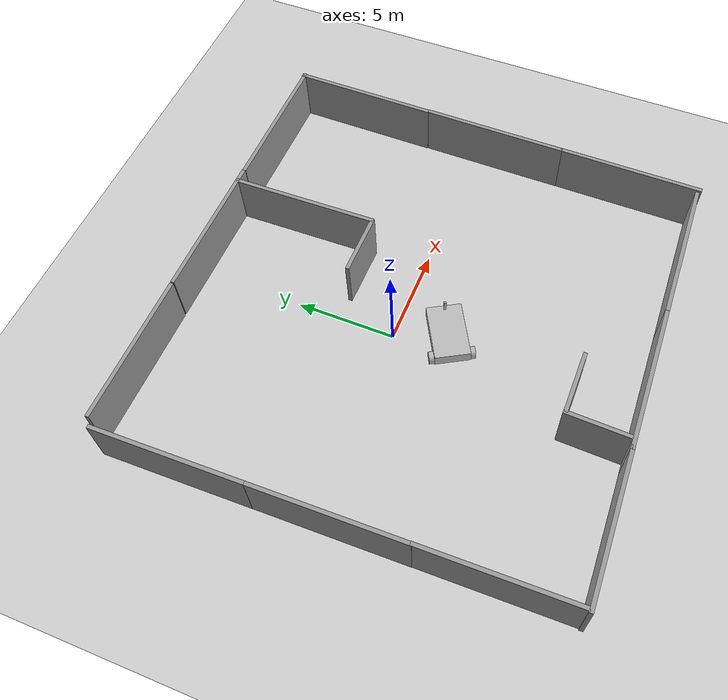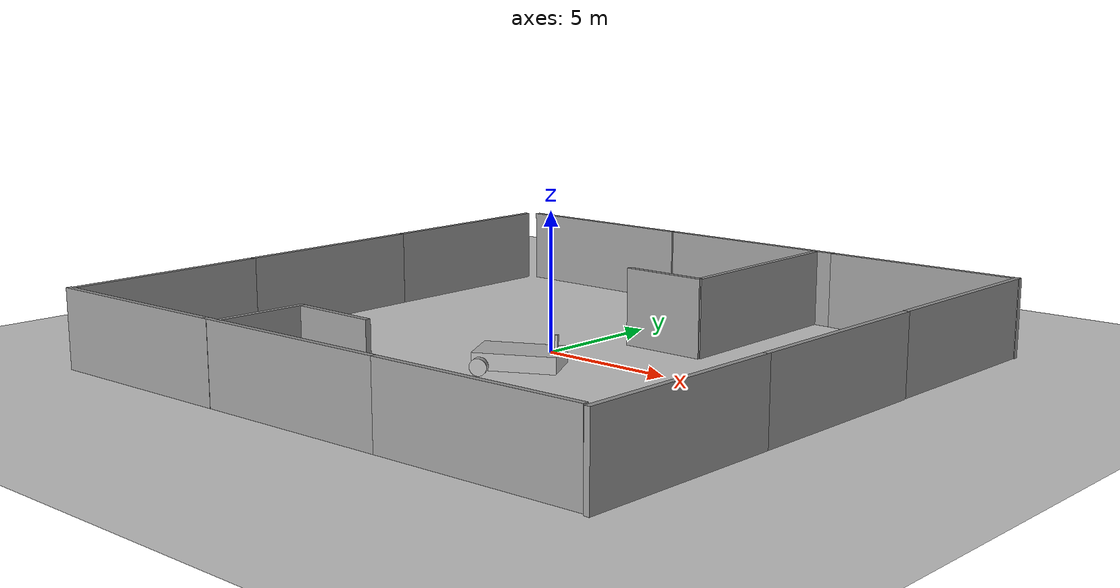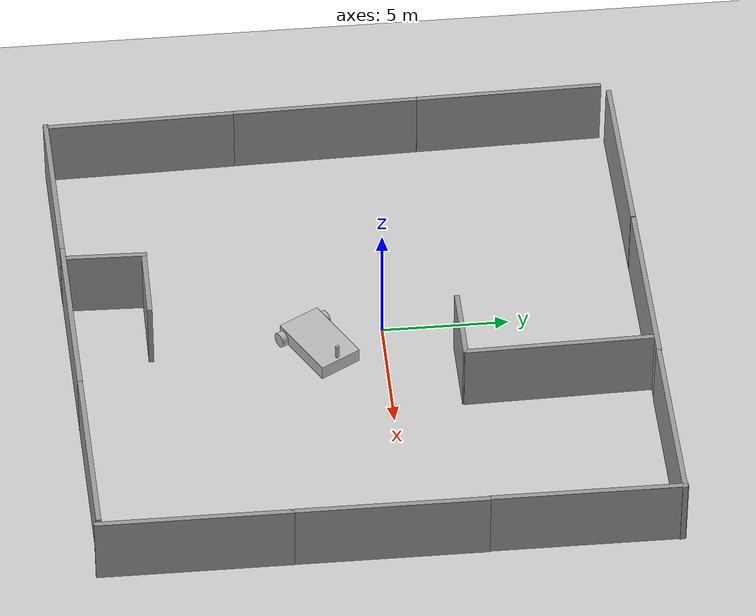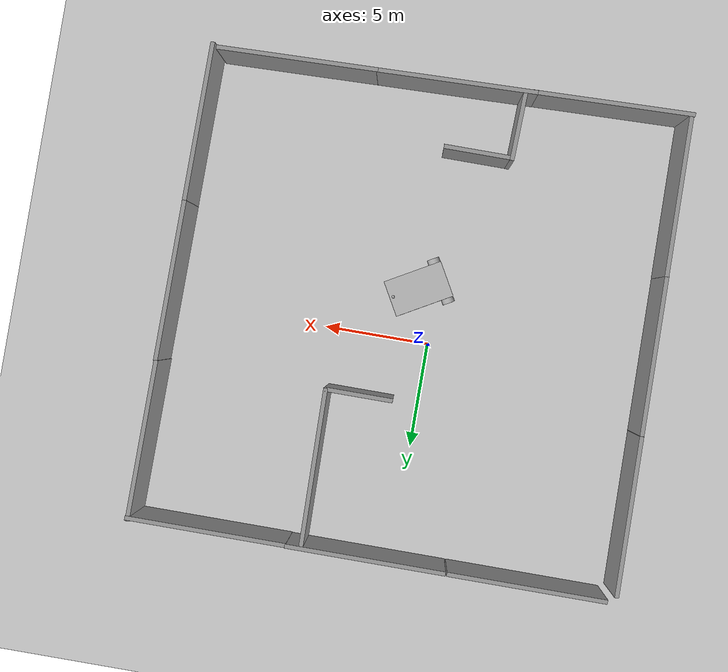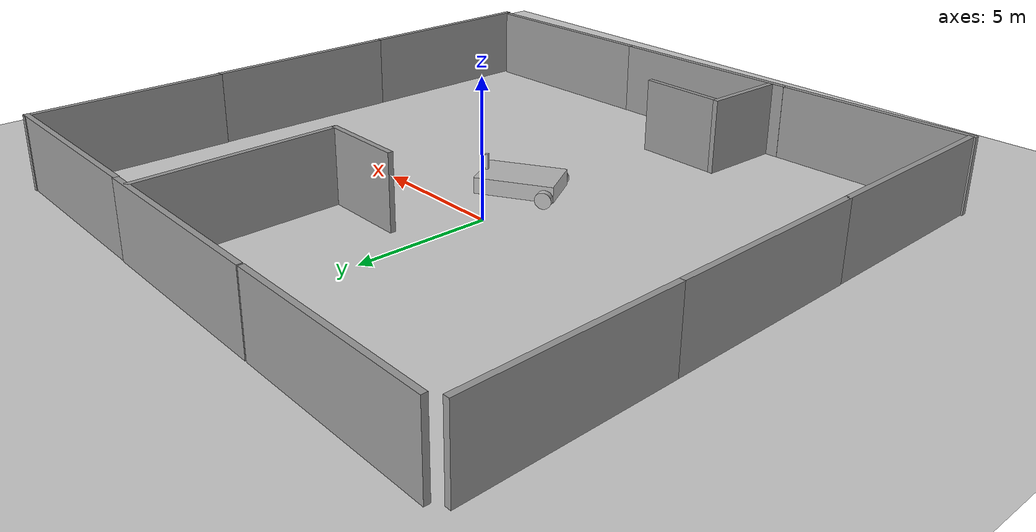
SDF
<sdf version="1.7">
 <world name="default">
  <light name="sun" type="directional">
   <pose>0 0 10 0 -0 0</pose>
   <diffuse>0.8 0.8 0.8 1</diffuse>
   <specular>0.2 0.2 0.2 1</specular>
   <attenuation>
    <range>1000</range>
    <constant>0.9</constant>
    <linear>0.01</linear>
    <quadratic>0.001</quadratic>
   </attenuation>
   <direction>-0.5 0.1 -0.9</direction>
   <spot><inner_angle>0</inner_angle><outer_angle>0</outer_angle><falloff>0</falloff></spot>
  </light>
  <model name="ground_plane">
   <static>1</static>
   <link name="link">
    <collision name="collision">
     <geometry><plane><normal>0 0 1</normal><size>100 100</size></plane></geometry>
     <surface>
      <contact><collide_bitmask>65535</collide_bitmask></contact>
      <friction><ode><mu>100</mu><mu2>50</mu2></ode></friction>
     </surface>
    </collision>
    <visual name="visual">
     <cast_shadows>0</cast_shadows>
     <geometry><plane><normal>0 0 1</normal><size>100 100</size></plane></geometry>
     <material>
      <script><uri>file://media/materials/scripts/gazebo.material</uri><name>Gazebo/Grey</name></script>
     </material>
    </visual>
   </link>
  </model>
  <gravity>0 0 -9.8</gravity>
  <magnetic_field>6e-06 2.3e-05 -4.2e-05</magnetic_field>
  <atmosphere type="adiabatic"/>
  <physics type="ode">
   <max_step_size>0.001</max_step_size>
   <real_time_factor>1</real_time_factor>
   <real_time_update_rate>1000</real_time_update_rate>
  </physics>
  <scene><ambient>0.4 0.4 0.4 1</ambient><background>0.7 0.7 0.7 1</background><shadows>1</shadows></scene>
  <spherical_coordinates>
   <surface_model>EARTH_WGS84</surface_model>
   <latitude_deg>0</latitude_deg>
   <longitude_deg>0</longitude_deg>
   <elevation>0</elevation>
   <heading_deg>0</heading_deg>
  </spherical_coordinates>
  <model name="grey_wall">
   <static>1</static>
   <link name="link">
    <pose>0 0 1.4 0 -0 0</pose>
    <collision name="collision"><geometry><box><size>7.5 0.2 2.8</size></box></geometry></collision>
    <visual name="visual">
     <cast_shadows>0</cast_shadows>
     <geometry><box><size>7.5 0.2 2.8</size></box></geometry>
     <material>
      <script>
       <uri>model://grey_wall/materials/scripts</uri>
       <uri>model://grey_wall/materials/textures</uri>
       <name>vrc/grey_wall</name>
      </script>
     </material>
    </visual>
   </link>
   <pose>-6.36828 10.2011 0 0 -0 0</pose>
  </model>
  <model name="grey_wall_clone">
   <static>1</static>
   <link name="link">
    <pose>0 0 1.4 0 -0 0</pose>
    <collision name="collision"><geometry><box><size>7.5 0.2 2.8</size></box></geometry></collision>
    <visual name="visual">
     <cast_shadows>0</cast_shadows>
     <geometry><box><size>7.5 0.2 2.8</size></box></geometry>
     <material>
      <script>
       <uri>model://grey_wall/materials/scripts</uri>
       <uri>model://grey_wall/materials/textures</uri>
       <name>vrc/grey_wall</name>
      </script>
     </material>
    </visual>
   </link>
   <pose>1.19149 10.2049 0 0 -0 0</pose>
  </model>
  <model name="grey_wall_clone_0">
   <static>1</static>
   <link name="link">
    <pose>0 0 1.4 0 -0 0</pose>
    <collision name="collision"><geometry><box><size>7.5 0.2 2.8</size></box></geometry></collision>
    <visual name="visual">
     <cast_shadows>0</cast_shadows>
     <geometry><box><size>7.5 0.2 2.8</size></box></geometry>
     <material>
      <script>
       <uri>model://grey_wall/materials/scripts</uri>
       <uri>model://grey_wall/materials/textures</uri>
       <name>vrc/grey_wall</name>
      </script>
     </material>
    </visual>
   </link>
   <pose>8.64441 10.1839 0 0 -0 0</pose>
  </model>
  <model name="grey_wall_clone_1">
   <static>1</static>
   <link name="link">
    <pose>0 0 1.4 0 -0 0</pose>
    <collision name="collision"><geometry><box><size>7.5 0.2 2.8</size></box></geometry></collision>
    <visual name="visual">
     <cast_shadows>0</cast_shadows>
     <geometry><box><size>7.5 0.2 2.8</size></box></geometry>
     <material>
      <script>
       <uri>model://grey_wall/materials/scripts</uri>
       <uri>model://grey_wall/materials/textures</uri>
       <name>vrc/grey_wall</name>
      </script>
     </material>
    </visual>
   </link>
   <pose>12.2417 6.56557 -0 0 -0 1.56427</pose>
  </model>
  <model name="grey_wall_clone_1_clone">
   <static>1</static>
   <link name="link">
    <pose>0 0 1.4 0 -0 0</pose>
    <collision name="collision"><geometry><box><size>7.5 0.2 2.8</size></box></geometry></collision>
    <visual name="visual">
     <cast_shadows>0</cast_shadows>
     <geometry><box><size>7.5 0.2 2.8</size></box></geometry>
     <material>
      <script>
       <uri>model://grey_wall/materials/scripts</uri>
       <uri>model://grey_wall/materials/textures</uri>
       <name>vrc/grey_wall</name>
      </script>
     </material>
    </visual>
   </link>
   <pose>12.2208 -0.896999 -0 0 -0 1.56427</pose>
  </model>
  <model name="grey_wall_clone_1_clone_0">
   <static>1</static>
   <link name="link">
    <pose>0 0 1.4 0 -0 0</pose>
    <collision name="collision"><geometry><box><size>7.5 0.2 2.8</size></box></geometry></collision>
    <visual name="visual">
     <cast_shadows>0</cast_shadows>
     <geometry><box><size>7.5 0.2 2.8</size></box></geometry>
     <material>
      <script>
       <uri>model://grey_wall/materials/scripts</uri>
       <uri>model://grey_wall/materials/textures</uri>
       <name>vrc/grey_wall</name>
      </script>
     </material>
    </visual>
   </link>
   <pose>12.1785 -8.2791 -0 0 -0 1.56427</pose>
  </model>
  <model name="grey_wall_clone_1_clone_1">
   <static>1</static>
   <link name="link">
    <pose>0 0 1.4 0 -0 0</pose>
    <collision name="collision"><geometry><box><size>7.5 0.2 2.8</size></box></geometry></collision>
    <visual name="visual">
     <cast_shadows>0</cast_shadows>
     <geometry><box><size>7.5 0.2 2.8</size></box></geometry>
     <material>
      <script>
       <uri>model://grey_wall/materials/scripts</uri>
       <uri>model://grey_wall/materials/textures</uri>
       <name>vrc/grey_wall</name>
      </script>
     </material>
    </visual>
   </link>
   <pose>8.2116 -11.9509 -0 0 -0 0.031457</pose>
  </model>
  <model name="grey_wall_clone_1_clone_1_clone">
   <static>1</static>
   <link name="link">
    <pose>0 0 1.4 0 -0 0</pose>
    <collision name="collision"><geometry><box><size>7.5 0.2 2.8</size></box></geometry></collision>
    <visual name="visual">
     <cast_shadows>0</cast_shadows>
     <geometry><box><size>7.5 0.2 2.8</size></box></geometry>
     <material>
      <script>
       <uri>model://grey_wall/materials/scripts</uri>
       <uri>model://grey_wall/materials/textures</uri>
       <name>vrc/grey_wall</name>
      </script>
     </material>
    </visual>
   </link>
   <pose>0.788473 -12.1836 -0 0 -0 0.031457</pose>
  </model>
  <model name="grey_wall_clone_1_clone_1_clone_0">
   <static>1</static>
   <link name="link">
    <pose>0 0 1.4 0 -0 0</pose>
    <collision name="collision"><geometry><box><size>7.5 0.2 2.8</size></box></geometry></collision>
    <visual name="visual">
     <cast_shadows>0</cast_shadows>
     <geometry><box><size>7.5 0.2 2.8</size></box></geometry>
     <material>
      <script>
       <uri>model://grey_wall/materials/scripts</uri>
       <uri>model://grey_wall/materials/textures</uri>
       <name>vrc/grey_wall</name>
      </script>
     </material>
    </visual>
   </link>
   <pose>-6.50563 -12.4194 -0 0 -0 0.031457</pose>
  </model>
  <model name="grey_wall_clone_1_clone_1_clone_1">
   <static>1</static>
   <link name="link">
    <pose>0 0 1.4 0 -0 0</pose>
    <collision name="collision"><geometry><box><size>7.5 0.2 2.8</size></box></geometry></collision>
    <visual name="visual">
     <cast_shadows>0</cast_shadows>
     <geometry><box><size>7.5 0.2 2.8</size></box></geometry>
     <material>
      <script>
       <uri>model://grey_wall/materials/scripts</uri>
       <uri>model://grey_wall/materials/textures</uri>
       <name>vrc/grey_wall</name>
      </script>
     </material>
    </visual>
   </link>
   <pose>-10.1589 -8.73128 0 0 -0 1.58783</pose>
  </model>
  <model name="grey_wall_clone_1_clone_1_clone_1_clone">
   <static>1</static>
   <link name="link">
    <pose>0 0 1.4 0 -0 0</pose>
    <collision name="collision"><geometry><box><size>7.5 0.2 2.8</size></box></geometry></collision>
    <visual name="visual">
     <cast_shadows>0</cast_shadows>
     <geometry><box><size>7.5 0.2 2.8</size></box></geometry>
     <material>
      <script>
       <uri>model://grey_wall/materials/scripts</uri>
       <uri>model://grey_wall/materials/textures</uri>
       <name>vrc/grey_wall</name>
      </script>
     </material>
    </visual>
   </link>
   <pose>-10.2945 -1.31631 0 0 -0 1.58783</pose>
  </model>
  <model name="grey_wall_clone_1_clone_1_clone_1_clone_0">
   <static>1</static>
   <link name="link">
    <pose>0 0 1.4 0 -0 0</pose>
    <collision name="collision"><geometry><box><size>7.5 0.2 2.8</size></box></geometry></collision>
    <visual name="visual">
     <cast_shadows>0</cast_shadows>
     <geometry><box><size>7.5 0.2 2.8</size></box></geometry>
     <material>
      <script>
       <uri>model://grey_wall/materials/scripts</uri>
       <uri>model://grey_wall/materials/textures</uri>
       <name>vrc/grey_wall</name>
      </script>
     </material>
    </visual>
   </link>
   <pose>-10.4255 6.18579 0 0 -0 1.58783</pose>
  </model>
  <model name="grey_wall_clone_1_clone_1_clone_1_clone_1">
   <static>1</static>
   <link name="link">
    <pose>0 0 1.4 0 -0 0</pose>
    <collision name="collision"><geometry><box><size>7.5 0.2 2.8</size></box></geometry></collision>
    <visual name="visual">
     <cast_shadows>0</cast_shadows>
     <geometry><box><size>7.5 0.2 2.8</size></box></geometry>
     <material>
      <script>
       <uri>model://grey_wall/materials/scripts</uri>
       <uri>model://grey_wall/materials/textures</uri>
       <name>vrc/grey_wall</name>
      </script>
     </material>
    </visual>
   </link>
   <pose>4.25844 6.49342 0 0 -0 1.58783</pose>
  </model>
  <model name="grey_wall_medium">
   <link name="link">
    <pose>0 -0 1.4 -0 -0 -0</pose>
    <inertial>
     <inertia><ixx>0</ixx><ixy>0</ixy><ixz>0</ixz><iyy>0</iyy><iyz>0</iyz><izz>0</izz></inertia>
     <mass>0</mass>
    </inertial>
    <visual name="visual">
     <cast_shadows>0</cast_shadows>
     <geometry><box><size>3.18298 0.2 2.8</size></box></geometry>
     <material>
      <script>
       <uri>model://grey_wall/materials/scripts</uri>
       <uri>model://grey_wall/materials/textures</uri>
       <name>vrc/grey_wall</name>
      </script>
      <shader type="pixel"/>
     </material>
    </visual>
    <collision name="collision">
     <geometry><box><size>3.18298 0.2 2.8</size></box></geometry>
     <surface>
      <friction>
       <ode><mu>1</mu><mu2>1</mu2><fdir1>0 0 0</fdir1><slip1>0</slip1><slip2>0</slip2></ode>
       <torsional>
        <coefficient>1</coefficient>
        <patch_radius>0</patch_radius>
        <surface_radius>0</surface_radius>
        <use_patch_radius>1</use_patch_radius>
        <ode><slip>0</slip></ode>
       </torsional>
      </friction>
      <bounce><restitution_coefficient>0</restitution_coefficient><threshold>1e+06</threshold></bounce>
      <contact>
       <collide_without_contact>0</collide_without_contact>
       <collide_without_contact_bitmask>1</collide_without_contact_bitmask>
       <collide_bitmask>1</collide_bitmask>
       <ode>
        <soft_cfm>0</soft_cfm>
        <soft_erp>0.2</soft_erp>
        <kp>1e+13</kp>
        <kd>1</kd>
        <max_vel>0.01</max_vel>
        <min_depth>0</min_depth>
       </ode>
       <bullet>
        <split_impulse>1</split_impulse>
        <split_impulse_penetration_threshold>-0.01</split_impulse_penetration_threshold>
        <soft_cfm>0</soft_cfm>
        <soft_erp>0.2</soft_erp>
        <kp>1e+13</kp>
        <kd>1</kd>
       </bullet>
      </contact>
     </surface>
    </collision>
   </link>
   <static>1</static>
   <pose>2.78608 2.79271 0 0 -0 0</pose>
  </model>
  <model name="grey_wall_medium_0">
   <link name="link">
    <pose>0 -0 1.4 -0 -0 -0</pose>
    <inertial>
     <inertia><ixx>0</ixx><ixy>0</ixy><ixz>0</ixz><iyy>0</iyy><iyz>0</iyz><izz>0</izz></inertia>
     <mass>0</mass>
    </inertial>
    <visual name="visual">
     <cast_shadows>0</cast_shadows>
     <geometry><box><size>3.18298 0.2 2.8</size></box></geometry>
     <material>
      <script>
       <uri>model://grey_wall/materials/scripts</uri>
       <uri>model://grey_wall/materials/textures</uri>
       <name>vrc/grey_wall</name>
      </script>
      <shader type="pixel"/>
     </material>
    </visual>
    <collision name="collision">
     <geometry><box><size>3.18298 0.2 2.8</size></box></geometry>
     <surface>
      <friction>
       <ode><mu>1</mu><mu2>1</mu2><fdir1>0 0 0</fdir1><slip1>0</slip1><slip2>0</slip2></ode>
       <torsional>
        <coefficient>1</coefficient>
        <patch_radius>0</patch_radius>
        <surface_radius>0</surface_radius>
        <use_patch_radius>1</use_patch_radius>
        <ode><slip>0</slip></ode>
       </torsional>
      </friction>
      <bounce><restitution_coefficient>0</restitution_coefficient><threshold>1e+06</threshold></bounce>
      <contact>
       <collide_without_contact>0</collide_without_contact>
       <collide_without_contact_bitmask>1</collide_without_contact_bitmask>
       <collide_bitmask>1</collide_bitmask>
       <ode>
        <soft_cfm>0</soft_cfm>
        <soft_erp>0.2</soft_erp>
        <kp>1e+13</kp>
        <kd>1</kd>
        <max_vel>0.01</max_vel>
        <min_depth>0</min_depth>
       </ode>
       <bullet>
        <split_impulse>1</split_impulse>
        <split_impulse_penetration_threshold>-0.01</split_impulse_penetration_threshold>
        <soft_cfm>0</soft_cfm>
        <soft_erp>0.2</soft_erp>
        <kp>1e+13</kp>
        <kd>1</kd>
       </bullet>
      </contact>
     </surface>
    </collision>
   </link>
   <static>1</static>
   <pose>-2.35061 -10.6194 0 0 -0 1.54028</pose>
  </model>
  <model name="grey_wall_medium_1">
   <link name="link">
    <pose>0 -0 1.4 -0 -0 -0</pose>
    <inertial>
     <inertia><ixx>0</ixx><ixy>0</ixy><ixz>0</ixz><iyy>0</iyy><iyz>0</iyz><izz>0</izz></inertia>
     <mass>0</mass>
    </inertial>
    <visual name="visual">
     <cast_shadows>0</cast_shadows>
     <geometry><box><size>3.18298 0.2 2.8</size></box></geometry>
     <material>
      <script>
       <uri>model://grey_wall/materials/scripts</uri>
       <uri>model://grey_wall/materials/textures</uri>
       <name>vrc/grey_wall</name>
      </script>
      <shader type="pixel"/>
     </material>
    </visual>
    <collision name="collision">
     <geometry><box><size>3.18298 0.2 2.8</size></box></geometry>
     <surface>
      <friction>
       <ode><mu>1</mu><mu2>1</mu2><fdir1>0 0 0</fdir1><slip1>0</slip1><slip2>0</slip2></ode>
       <torsional>
        <coefficient>1</coefficient>
        <patch_radius>0</patch_radius>
        <surface_radius>0</surface_radius>
        <use_patch_radius>1</use_patch_radius>
        <ode><slip>0</slip></ode>
       </torsional>
      </friction>
      <bounce><restitution_coefficient>0</restitution_coefficient><threshold>1e+06</threshold></bounce>
      <contact>
       <collide_without_contact>0</collide_without_contact>
       <collide_without_contact_bitmask>1</collide_without_contact_bitmask>
       <collide_bitmask>1</collide_bitmask>
       <ode>
        <soft_cfm>0</soft_cfm>
        <soft_erp>0.2</soft_erp>
        <kp>1e+13</kp>
        <kd>1</kd>
        <max_vel>0.01</max_vel>
        <min_depth>0</min_depth>
       </ode>
       <bullet>
        <split_impulse>1</split_impulse>
        <split_impulse_penetration_threshold>-0.01</split_impulse_penetration_threshold>
        <soft_cfm>0</soft_cfm>
        <soft_erp>0.2</soft_erp>
        <kp>1e+13</kp>
        <kd>1</kd>
       </bullet>
      </contact>
     </surface>
    </collision>
   </link>
   <static>1</static>
   <pose>-0.712109 -9.13697 0 0 -0 0</pose>
  </model>
  <model name="rugbot2">
   <link name="base_footprint">
    <inertial>
     <pose>0.061594 -0.000444 -0.079729 0 -0 0</pose>
     <mass>4.99427</mass>
     <inertia>
      <ixx>1.11001</ixx>
      <ixy>0.00269941</ixy>
      <ixz>0.185852</ixz>
      <iyy>5.11283</iyy>
      <iyz>-0.000169001</iyz>
      <izz>5.75241</izz>
     </inertia>
    </inertial>
    <sensor name="laser1" type="ray">
     <visualize>1</visualize>
     <update_rate>5</update_rate>
     <ray>
      <scan>
       <horizontal>
        <samples>360</samples>
        <min_angle>3.14</min_angle>
        <max_angle>-3.14</max_angle>
        <resolution>1</resolution>
       </horizontal>
       <vertical><samples>1</samples><min_angle>0</min_angle><max_angle>0</max_angle></vertical>
      </scan>
      <range><min>0.3</min><max>20</max></range>
     </ray>
     <plugin name="gazebo_ros_head_hokuyo_controller" filename="libgazebo_ros_laser.so">
      <topicName>rugbot2/scan</topicName>
      <frameName>laser</frameName>
      <robotNamespace>/</robotNamespace>
     </plugin>
     <pose>1.32626 -0.04215 0.57358 0 -0 0</pose>
    </sensor>
    <visual name="base_footprint_fixed_joint_lump__rugbot2__base_footprint_fixed_joint_lump__Diff_Bot__visual_visual_1_visual">
     <pose>0.06283 -0.00211 0.02162 0 -0 0</pose>
     <geometry><box><size>2.88957 1.76304 0.587159</size></box></geometry>
     <material><shader type="pixel"/></material>
    </visual>
    <visual name="base_footprint_fixed_joint_lump__rugbot.sdf__visual_visual_1">
     <pose>1.32626 -0.04215 0.57358 0 -0 0</pose>
     <geometry><box><size>0.111563 0.119301 0.616724</size></box></geometry>
     <material><shader type="pixel"/></material>
    </visual>
    <visual name="base_footprint_fixed_joint_lump__rugbot2__visual_visual_2">
     <pose>1.30761 -0.00211 -0.2 0 -0 0</pose>
     <geometry><sphere><radius>0.2</radius></sphere></geometry>
     <material><shader type="pixel"/></material>
    </visual>
    <collision name="base_footprint_fixed_joint_lump__rugbot2__base_footprint_fixed_joint_lump__Diff_Bot__collision_collision_1_collision">
     <pose>0.06283 -0.00211 0.02162 0 -0 0</pose>
     <geometry><box><size>2.88957 1.76304 0.587159</size></box></geometry>
     <surface>
      <friction>
       <ode><mu>1</mu><mu2>1</mu2><fdir1>0 0 0</fdir1><slip1>0</slip1><slip2>0</slip2></ode>
       <torsional>
        <coefficient>1</coefficient>
        <patch_radius>0</patch_radius>
        <surface_radius>0</surface_radius>
        <use_patch_radius>1</use_patch_radius>
        <ode><slip>0</slip></ode>
       </torsional>
      </friction>
      <bounce><restitution_coefficient>0</restitution_coefficient><threshold>1e+06</threshold></bounce>
      <contact>
       <collide_without_contact>0</collide_without_contact>
       <collide_without_contact_bitmask>1</collide_without_contact_bitmask>
       <collide_bitmask>1</collide_bitmask>
       <ode>
        <soft_cfm>0</soft_cfm>
        <soft_erp>0.2</soft_erp>
        <kp>1e+13</kp>
        <kd>1</kd>
        <max_vel>0.01</max_vel>
        <min_depth>0</min_depth>
       </ode>
       <bullet>
        <split_impulse>1</split_impulse>
        <split_impulse_penetration_threshold>-0.01</split_impulse_penetration_threshold>
        <soft_cfm>0</soft_cfm>
        <soft_erp>0.2</soft_erp>
        <kp>1e+13</kp>
        <kd>1</kd>
       </bullet>
      </contact>
     </surface>
    </collision>
    <collision name="base_footprint_fixed_joint_lump__rugbot.sdf__collision_collision_1">
     <pose>1.32626 -0.04215 0.57358 0 -0 0</pose>
     <geometry><box><size>0.111563 0.119301 0.66724</size></box></geometry>
     <surface>
      <friction>
       <ode><mu>1</mu><mu2>1</mu2><fdir1>0 0 0</fdir1><slip1>0</slip1><slip2>0</slip2></ode>
       <torsional>
        <coefficient>1</coefficient>
        <patch_radius>0</patch_radius>
        <surface_radius>0</surface_radius>
        <use_patch_radius>1</use_patch_radius>
        <ode><slip>0</slip></ode>
       </torsional>
      </friction>
      <bounce><restitution_coefficient>0</restitution_coefficient><threshold>1e+06</threshold></bounce>
      <contact>
       <collide_without_contact>0</collide_without_contact>
       <collide_without_contact_bitmask>1</collide_without_contact_bitmask>
       <collide_bitmask>1</collide_bitmask>
       <ode>
        <soft_cfm>0</soft_cfm>
        <soft_erp>0.2</soft_erp>
        <kp>1e+13</kp>
        <kd>1</kd>
        <max_vel>0.01</max_vel>
        <min_depth>0</min_depth>
       </ode>
       <bullet>
        <split_impulse>1</split_impulse>
        <split_impulse_penetration_threshold>-0.01</split_impulse_penetration_threshold>
        <soft_cfm>0</soft_cfm>
        <soft_erp>0.2</soft_erp>
        <kp>1e+13</kp>
        <kd>1</kd>
       </bullet>
      </contact>
     </surface>
    </collision>
    <collision name="base_footprint_fixed_joint_lump__rugbot2__collision_collision_2">
     <pose>1.30761 -0.00211 -0.2 0 -0 0</pose>
     <geometry><sphere><radius>0.2</radius></sphere></geometry>
     <surface>
      <friction>
       <ode><mu>1</mu><mu2>1</mu2><fdir1>0 0 0</fdir1><slip1>0</slip1><slip2>0</slip2></ode>
       <torsional>
        <coefficient>1</coefficient>
        <patch_radius>0</patch_radius>
        <surface_radius>0</surface_radius>
        <use_patch_radius>1</use_patch_radius>
        <ode><slip>0</slip></ode>
       </torsional>
      </friction>
      <bounce><restitution_coefficient>0</restitution_coefficient><threshold>1e+06</threshold></bounce>
      <contact>
       <collide_without_contact>0</collide_without_contact>
       <collide_without_contact_bitmask>1</collide_without_contact_bitmask>
       <collide_bitmask>1</collide_bitmask>
       <ode>
        <soft_cfm>0</soft_cfm>
        <soft_erp>0.2</soft_erp>
        <kp>1e+13</kp>
        <kd>1</kd>
        <max_vel>0.01</max_vel>
        <min_depth>0</min_depth>
       </ode>
       <bullet>
        <split_impulse>1</split_impulse>
        <split_impulse_penetration_threshold>-0.01</split_impulse_penetration_threshold>
        <soft_cfm>0</soft_cfm>
        <soft_erp>0.2</soft_erp>
        <kp>1e+13</kp>
        <kd>1</kd>
       </bullet>
      </contact>
     </surface>
    </collision>
   </link>
   <link name="rugbot2__Diff_Bot__link_1">
    <pose>-1.08281 1.00475 -0.12241 1.5707 -0 0</pose>
    <inertial>
     <mass>1</mass>
     <inertia><ixx>0.145833</ixx><ixy>0</ixy><ixz>0</ixz><iyy>0.145833</iyy><iyz>0</iyz><izz>0.125</izz></inertia>
    </inertial>
    <visual name="rugbot2__Diff_Bot__link_1_fixed_joint_lump__Diff_Bot__visual_visual_visual">
     <geometry><cylinder><length>0.25</length><radius>0.3</radius></cylinder></geometry>
     <material><shader type="pixel"><normal_map>__default__</normal_map></shader></material>
    </visual>
    <collision name="rugbot2__Diff_Bot__link_1_fixed_joint_lump__Diff_Bot__collision_collision_collision">
     <geometry><cylinder><radius>0.3</radius><length>0.25</length></cylinder></geometry>
     <surface>
      <friction>
       <ode><mu>100</mu><mu2>100</mu2><fdir1>0 0 0</fdir1><slip1>0</slip1><slip2>0</slip2></ode>
       <torsional>
        <coefficient>1</coefficient>
        <patch_radius>0</patch_radius>
        <surface_radius>0</surface_radius>
        <use_patch_radius>1</use_patch_radius>
        <ode><slip>0</slip></ode>
       </torsional>
      </friction>
      <bounce><restitution_coefficient>0</restitution_coefficient><threshold>1e+06</threshold></bounce>
      <contact>
       <collide_without_contact>0</collide_without_contact>
       <collide_without_contact_bitmask>1</collide_without_contact_bitmask>
       <collide_bitmask>1</collide_bitmask>
       <ode>
        <soft_cfm>0</soft_cfm>
        <soft_erp>0.2</soft_erp>
        <kp>1e+13</kp>
        <kd>1</kd>
        <max_vel>0.01</max_vel>
        <min_depth>0</min_depth>
       </ode>
       <bullet>
        <split_impulse>1</split_impulse>
        <split_impulse_penetration_threshold>-0.01</split_impulse_penetration_threshold>
        <soft_cfm>0</soft_cfm>
        <soft_erp>0.2</soft_erp>
        <kp>1e+13</kp>
        <kd>1</kd>
       </bullet>
      </contact>
     </surface>
    </collision>
   </link>
   <link name="rugbot2__Diff_Bot__link_1_clone">
    <pose>-1.08179 -1.01015 -0.12239 1.5707 -0 0</pose>
    <inertial>
     <mass>1</mass>
     <inertia><ixx>0.145833</ixx><ixy>0</ixy><ixz>0</ixz><iyy>0.145833</iyy><iyz>0</iyz><izz>0.125</izz></inertia>
    </inertial>
    <visual name="rugbot2__Diff_Bot__link_1_clone_fixed_joint_lump__Diff_Bot__visual_visual_visual">
     <geometry><cylinder><length>0.25</length><radius>0.3</radius></cylinder></geometry>
     <material><shader type="pixel"><normal_map>__default__</normal_map></shader></material>
    </visual>
    <collision name="rugbot2__Diff_Bot__link_1_clone_fixed_joint_lump__Diff_Bot__collision_collision_collision">
     <geometry><cylinder><radius>0.3</radius><length>0.25</length></cylinder></geometry>
     <surface>
      <friction>
       <ode><mu>100</mu><mu2>100</mu2><fdir1>0 0 0</fdir1><slip1>0</slip1><slip2>0</slip2></ode>
       <torsional>
        <coefficient>1</coefficient>
        <patch_radius>0</patch_radius>
        <surface_radius>0</surface_radius>
        <use_patch_radius>1</use_patch_radius>
        <ode><slip>0</slip></ode>
       </torsional>
      </friction>
      <bounce><restitution_coefficient>0</restitution_coefficient><threshold>1e+06</threshold></bounce>
      <contact>
       <collide_without_contact>0</collide_without_contact>
       <collide_without_contact_bitmask>1</collide_without_contact_bitmask>
       <collide_bitmask>1</collide_bitmask>
       <ode>
        <soft_cfm>0</soft_cfm>
        <soft_erp>0.2</soft_erp>
        <kp>1e+13</kp>
        <kd>1</kd>
        <max_vel>0.01</max_vel>
        <min_depth>0</min_depth>
       </ode>
       <bullet>
        <split_impulse>1</split_impulse>
        <split_impulse_penetration_threshold>-0.01</split_impulse_penetration_threshold>
        <soft_cfm>0</soft_cfm>
        <soft_erp>0.2</soft_erp>
        <kp>1e+13</kp>
        <kd>1</kd>
       </bullet>
      </contact>
     </surface>
    </collision>
   </link>
   <joint name="rugbot2__base_footprint_JOINT_1" type="revolute">
    <parent>base_footprint</parent>
    <child>rugbot2__Diff_Bot__link_1</child>
    <axis>
     <xyz>0 0 -1</xyz>
     <limit><lower>-1e+16</lower><upper>1e+16</upper><effort>-1</effort><velocity>-1</velocity></limit>
     <dynamics>
      <spring_reference>0</spring_reference>
      <spring_stiffness>0</spring_stiffness>
      <damping>0</damping>
      <friction>0</friction>
     </dynamics>
    </axis>
    <physics>
     <ode><limit><cfm>0</cfm><erp>0.2</erp></limit><suspension><cfm>0</cfm><erp>0.2</erp></suspension></ode>
    </physics>
   </joint>
   <joint name="rugbot2__base_footprint_JOINT_2" type="revolute">
    <parent>base_footprint</parent>
    <child>rugbot2__Diff_Bot__link_1_clone</child>
    <axis>
     <xyz>0 0 -1</xyz>
     <limit><lower>-1e+16</lower><upper>1e+16</upper><effort>-1</effort><velocity>-1</velocity></limit>
     <dynamics>
      <spring_reference>0</spring_reference>
      <spring_stiffness>0</spring_stiffness>
      <damping>0</damping>
      <friction>0</friction>
     </dynamics>
    </axis>
    <physics>
     <ode><limit><cfm>0</cfm><erp>0.2</erp></limit><suspension><cfm>0</cfm><erp>0.2</erp></suspension></ode>
    </physics>
   </joint>
   <static>0</static>
   <plugin name="differential_drive_controller" filename="libgazebo_ros_diff_drive.so">
    <updateRate>100</updateRate>
    <leftJoint>rugbot2__base_footprint_JOINT_1</leftJoint>
    <rightJoint>rugbot2__base_footprint_JOINT_2</rightJoint>
    <wheelSeparation>2.01304</wheelSeparation>
    <wheelDiameter>0.6</wheelDiameter>
    <wheelAcceleration>0</wheelAcceleration>
    <wheelTorque>20</wheelTorque>
    <commandTopic>cmd_vel</commandTopic>
    <odometryTopic>odom</odometryTopic>
    <odometryFrame>odom</odometryFrame>
    <robotBaseFrame>base_footprint</robotBaseFrame>
    <odometrySource>1</odometrySource>
    <publishWheelTF>1</publishWheelTF>
    <publishOdom>1</publishOdom>
    <publishWheelJointState>1</publishWheelJointState>
    <legacyMode>0</legacyMode>
    <robotNamespace>/</robotNamespace>
   </plugin>
   <pose>0.84493 -2.57546 0.412255 5e-06 0.009379 0.516989</pose>
  </model>
 </world>
</sdf>
